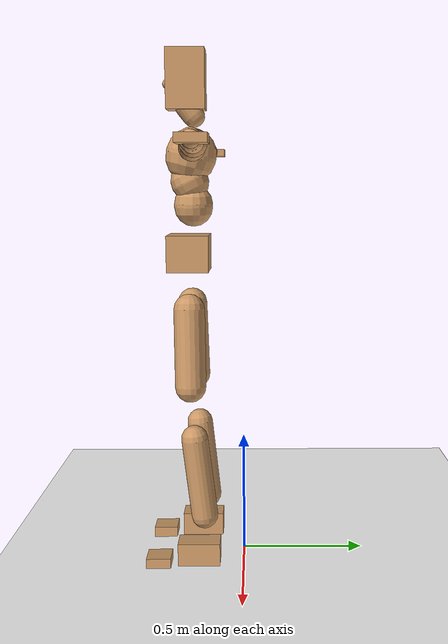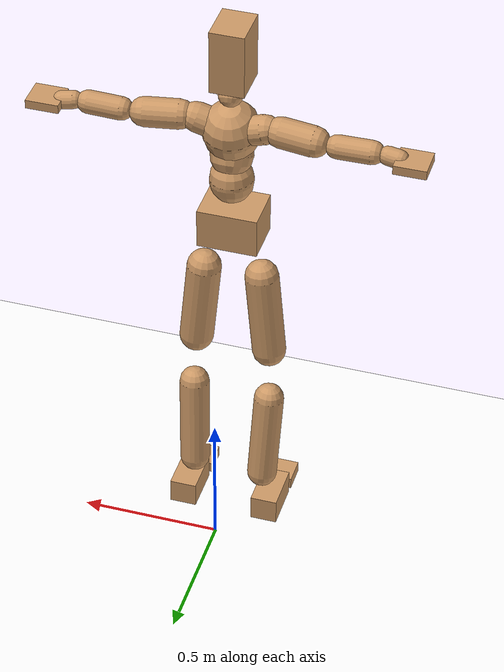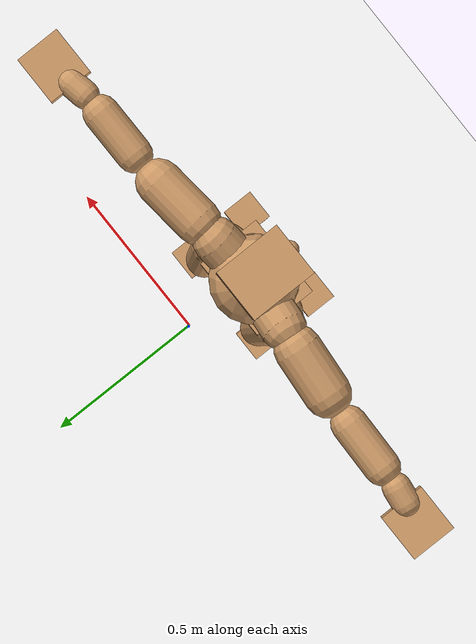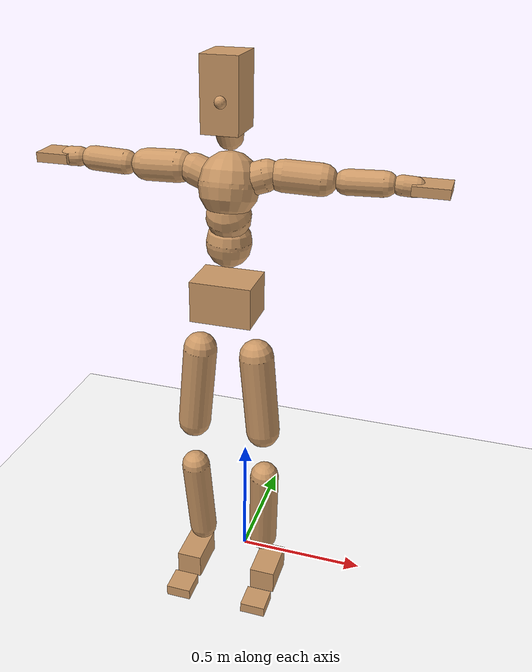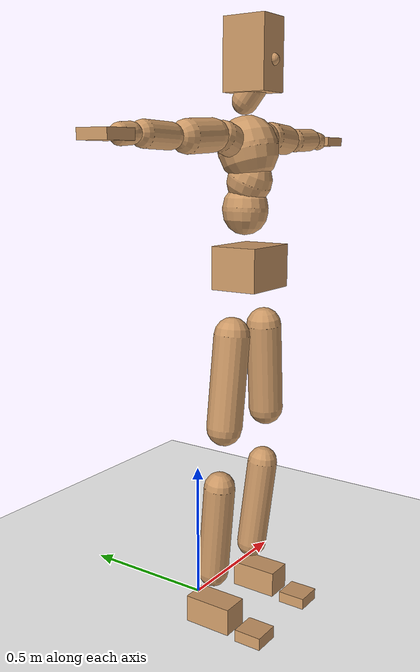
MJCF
<mujoco model="humanoid">
  <option integrator="implicitfast" />

  <visual>
    <global offwidth="1280" offheight="960" />
    <headlight active="1" ambient="0.34 0.34 0.34" diffuse="0.5 0.5 0.5" />
  </visual>

  <default>
    <joint damping="2" stiffness="2" armature="0.01" limited="true" solimplimit="0 .99 .01" />
    <geom condim="1" friction="0.7 0.005 0.0001" solimp=".99 .99 .003" solref="0.015 1" margin="0.001" rgba="0.8 0.6 .4 1" />
    <default class="smplcontact">
      <geom condim="3" friction="1. 0.005 0.0001" solref="0.015 1" solimp="0.98 0.98 0.001" priority="1" />
    </default>
    <default class="stiff_medium">
      <joint stiffness="10" />
    </default>
    <default class="stiff_medium_higher">
      <joint stiffness="50" />
    </default>
    <default class="stiff_high">
      <joint stiffness="100" />
    </default>
  </default>

  <asset>
    <texture type="skybox" builtin="gradient" rgb1="0.99 0.99 0.99" rgb2="0.608 0.828 0.892" width="100" />
    <texture builtin="flat" height="1278" mark="cross" markrgb="1 1 1" name="texgeom" random="0.01" rgb1="0.8 0.6 0.4" rgb2="0.8 0.6 0.4" type="cube" width="127" />
    <texture name="texplane" type="2d" builtin="checker" markrgb="1 1 1" rgb1="0.756 0.772 0.76" rgb2="0.6 0.6 0.6" width="100" height="100" />
    <material name="MatPlane" reflectance="0.5" texture="texplane" texrepeat="1 1" texuniform="true" />
    <material name="geom" texture="texgeom" texuniform="true" />
  </asset>

  <worldbody>
    <light name="tracking_light" pos="0 0 7" dir="0 0 -1" directional="true" cutoff="100" exponent="1" diffuse="1 1 1" specular="0.1 0.1 0.1" mode="trackcom" />
    <camera name="back" pos="0 3 2.4" xyaxes="-1 0 0 0 -1 2" mode="trackcom" />
    <camera name="side" pos="-3 0 2.4" xyaxes="0 -1 0 1 0 2" mode="trackcom" />
    <camera name="front_side" pos="-2.8 -2.8 0.8" xyaxes="0.5 -0.5 0 0.1 0.1 1" mode="trackcom" />
    <geom condim="3" name="floor" pos="0 0 0" rgba="1 1 1 1" size="100 100 .2" type="plane" material="MatPlane" />
    <body name="Pelvis" pos="-0.0018 -0.2233 1.27986" euler="90 0 0">
      <site name="Pelvis" size="0.01" />
      <freejoint name="Pelvis" />
      <geom type="box" pos="-0.0000 -0.0121 -0.0055" size="0.1069 0.0722 0.083" quat="1.0000 0.0000 0.0000 0.0000" density="3165.830099" name="Pelvis" />
      <body name="L_Hip" pos="0.0955625 -0.125675 -0.00935">
        <joint name="L_Hip_x" type="hinge" pos="0 0 0" axis="1 0 0" stiffness="17.19824030612245" range="-160.0 22.92" class="stiff_medium" damping="29.629361290924336" armature="0.022687051049198843"/>
        <joint name="L_Hip_y" type="hinge" pos="0 0 0" axis="0 1 0" stiffness="17.095561632653062" range="-70.0 70.0" class="stiff_medium" damping="16.759236135916318" armature="0.016429527259457156"/>
        <joint name="L_Hip_z" type="hinge" pos="0 0 0" axis="0 0 1" stiffness="17.10435142857143" range="-28.65 90.0" class="stiff_medium" damping="19.70284147196181" armature="0.022696093663089646"/>
        <geom type="capsule" density="2040.816327" fromto="0.0094875 -0.103125 -0.0012375 0.037675 -0.412775 -0.00495" size="0.0615" name="L_Hip" />
        <body name="L_Knee" pos="0.0471625 -0.5159 -0.0061875">
          <joint name="L_Knee_x" type="hinge" pos="0 0 0" axis="1 0 0" range="-5.16 171.89" damping="15.062760794576997" armature="0.021343797365827887" stiffness="3.321907163265306"/>
          <joint name="L_Knee_y" type="hinge" pos="0 0 0" axis="0 1 0" range="-4.58 6.88" damping="12.945965232871579" armature="0.015441578364462116" stiffness="3.3917763265306125"/>
          <joint name="L_Knee_z" type="hinge" pos="0 0 0" axis="0 0 1" range="-6.88 4.58" damping="15.006918060065535" armature="0.021384230246159514" stiffness="3.2910874489795923"/>
          <geom type="capsule" density="1234.567901" fromto="-0.0037125 -0.10945 -0.0119625 -0.0149875 -0.4378 -0.048125" size="0.0541" name="L_Knee" />
          <body name="L_Ankle" pos="-0.0187 -0.54725 -0.0600875">
            <joint name="L_Ankle_x" type="hinge" pos="0 0 0" axis="1 0 0" range="-45.84 45.84" class="stiff_medium" damping="8.859849432432517" armature="0.015857944517404413" stiffness="13.750018673469388"/>
            <joint name="L_Ankle_y" type="hinge" pos="0 0 0" axis="0 1 0" range="-74.48 22.92" class="stiff_medium" damping="4.399379468505369" armature="0.015640018623433526" stiffness="13.750011836734695"/>
            <joint name="L_Ankle_z" type="hinge" pos="0 0 0" axis="0 0 1" range="-4.58 4.58" class="stiff_medium" damping="8.387836414113993" armature="0.01421329287069428" stiffness="13.75"/>
            <geom type="box" pos="0.0320375 -0.0328625 0.033275" size="0.0483 0.0464 0.085" quat="1.0000 0.0000 0.0000 0.0000" density="449.071558" name="L_Ankle" class="smplcontact" />
            <body name="L_Toe" pos="0.0363 -0.076725 0.164038">
              <joint name="L_Toe_x" type="hinge" pos="0 0 0" axis="1 0 0" range="-91.67 22.92" armature="0.013386048586151967" damping="2.7133607799891966" stiffness="2.75"/>
              <joint name="L_Toe_y" type="hinge" pos="0 0 0" axis="0 1 0" range="-4.58 4.58" armature="0.012385744586589321" damping="2.610011402776648" stiffness="2.75"/>
              <joint name="L_Toe_z" type="hinge" pos="0 0 0" axis="0 0 1" range="-4.58 4.58" armature="0.010363183740581747" damping="2.3874151413861733" stiffness="2.75"/>
              <geom type="box" pos="-0.004125 0.0075625 0.0341" size="0.0478 0.02 0.0496" quat="1.0000 0.0000 0.0000 0.0000" density="423.206892" name="L_Toe" class="smplcontact" />
            </body>
          </body>
        </body>
      </body>
      <body name="R_Hip" pos="-0.0930875 -0.124437 -0.0059125">
        <joint name="R_Hip_x" type="hinge" pos="0 0 0" axis="1 0 0" stiffness="17.19824030612245" range="-160.0 22.92" class="stiff_medium" damping="29.629361290924336" armature="0.022687051049198843"/>
        <joint name="R_Hip_y" type="hinge" pos="0 0 0" axis="0 1 0" stiffness="17.095561632653062" range="-70.0 70.0" class="stiff_medium" damping="16.759236135916318" armature="0.016429527259457156"/>
        <joint name="R_Hip_z" type="hinge" pos="0 0 0" axis="0 0 1" stiffness="17.10435142857143" range="-90.0 28.65" class="stiff_medium" damping="19.70284147196181" armature="0.022696093663089646"/>
        <geom type="capsule" density="2040.816327" fromto="-0.0105875 -0.105188 -0.002475 -0.042075 -0.420887 -0.0097625" size="0.0606" name="R_Hip" />
        <body name="R_Knee" pos="-0.0526625 -0.526075 -0.0122375">
          <joint name="R_Knee_x" type="hinge" pos="0 0 0" axis="1 0 0" range="-5.16 171.89" damping="15.062760794576997" armature="0.021343797365827887" stiffness="3.321907163265306"/>
          <joint name="R_Knee_y" type="hinge" pos="0 0 0" axis="0 1 0" range="-6.88 4.58" damping="12.945965232871579" armature="0.015441578364462116" stiffness="3.3917763265306125"/>
          <joint name="R_Knee_z" type="hinge" pos="0 0 0" axis="0 0 1" range="-4.58 6.88" damping="15.006918060065535" armature="0.021384230246159514" stiffness="3.2910874489795923"/>
          <geom type="capsule" density="1234.567901" fromto="0.0044 -0.109587 -0.0116875 0.017325 -0.438213 -0.046475" size="0.0541" name="R_Knee" />
          <body name="R_Ankle" pos="0.021725 -0.5478 -0.0581625">
            <joint name="R_Ankle_x" type="hinge" pos="0 0 0" axis="1 0 0" range="-45.84 45.84" class="stiff_medium" damping="8.859849432432517" armature="0.015857944517404413" stiffness="13.750018673469388"/>
            <joint name="R_Ankle_y" type="hinge" pos="0 0 0" axis="0 1 0" range="-22.92 74.48" class="stiff_medium" damping="4.399379468505369" armature="0.015640018623433526" stiffness="13.750011836734695"/>
            <joint name="R_Ankle_z" type="hinge" pos="0 0 0" axis="0 0 1" range="-4.58 4.58" class="stiff_medium" damping="8.387836414113993" armature="0.01421329287069428" stiffness="13.75"/>
            <geom type="box" pos="-0.02915 -0.023925 0.0352" size="0.0483 0.0478 0.0865" quat="1.0000 0.0000 0.0000 0.0000" density="434.700981" name="R_Ankle" class="smplcontact" />
            <body name="R_Toe" pos="-0.034925 -0.0661375 0.169538">
              <joint name="R_Toe_x" type="hinge" pos="0 0 0" axis="1 0 0" range="-91.67 22.92" armature="0.013386048586151967" damping="2.7133607799891966" stiffness="2.75"/>
              <joint name="R_Toe_y" type="hinge" pos="0 0 0" axis="0 1 0" range="-4.58 4.58" armature="0.012385744586589321" damping="2.610011402776648" stiffness="2.75"/>
              <joint name="R_Toe_z" type="hinge" pos="0 0 0" axis="0 0 1" range="-4.58 4.58" armature="0.010363183740581747" damping="2.3874151413861733" stiffness="2.75"/>
              <geom type="box" pos="0.005775 0.0061875 0.0312125" size="0.0479 0.0216 0.0493" quat="1.0000 0.0000 0.0000 0.0000" density="407.384095" name="R_Toe" class="smplcontact" />
            </body>
          </body>
        </body>
      </body>
      <body name="Torso" pos="-0.0025 0.109 -0.0267">
        <joint name="Torso_x" type="hinge" pos="0 0 0" axis="1 0 0" range="-25.78 57.3" class="stiff_medium" damping="13.810652204593472" armature="0.009092501018959226" stiffness="9.323146326530612"/>
        <joint name="Torso_y" type="hinge" pos="0 0 0" axis="0 1 0" range="-57.3 57.3" class="stiff_high" damping="14.331171543099824" armature="0.005453647751768045" stiffness="94.1491306122449"/>
        <joint name="Torso_z" type="hinge" pos="0 0 0" axis="0 0 1" range="-34.38 34.38" class="stiff_high" damping="17.298336416757884" armature="0.007846444358372215" stiffness="95.34014042553191"/>
        <geom type="capsule" density="2040.816327" fromto="0.0025 0.0608 0.0005 0.003 0.0743 0.0006" size="0.0769" name="Torso" />
        <body name="Spine" pos="0.0055 0.1352 0.0011">
          <joint name="Spine_x" type="hinge" pos="0 0 0" axis="1 0 0" stiffness="9.198122653061224" range="-25.78 57.3" class="stiff_medium" damping="13.62544793240939" armature="0.008970566343267752"/>
          <joint name="Spine_y" type="hinge" pos="0 0 0" axis="0 1 0" stiffness="9.181372040816328" range="-57.3 57.3" class="stiff_high" damping="5.644321396937274" armature="0.005421705337566874"/>
          <joint name="Spine_z" type="hinge" pos="0 0 0" axis="0 0 1" stiffness="18.1392375" range="-34.38 34.38" class="stiff_high" damping="9.559994320421614" armature="0.006997835754189833"/>
          <geom type="capsule" density="2040.816327" fromto="0.0007 0.0238 0.0114 0.0008 0.0291 0.014" size="0.0755" name="Spine" />
          <body name="Chest" pos="0.0015 0.0529 0.0254">
            <joint name="Chest_x" type="hinge" pos="0 0 0" axis="1 0 0" stiffness="8.90027425531915" range="-25.78 57.3" class="stiff_medium" damping="13.35613299120066" armature="0.008907904701027891"/>
            <joint name="Chest_y" type="hinge" pos="0 0 0" axis="0 1 0" stiffness="8.011889047619047" range="-57.3 57.3" class="stiff_high" damping="5.2662250647625015" armature="0.005408588385784326"/>
            <joint name="Chest_z" type="hinge" pos="0 0 0" axis="0 0 1" stiffness="18.1318547826087" range="-34.38 34.38" class="stiff_high" damping="9.302458057933913" armature="0.006628583212401061"/>
            <geom type="capsule" density="2040.816327" fromto="-0.0009 0.0682 -0.0173 -0.001 0.0833 -0.0212" size="0.1002" name="Chest" />
            <body name="Neck" pos="-0.0028 0.2139 -0.0429">
              <joint name="Neck_x" type="hinge" pos="0 0 0" axis="1 0 0" range="-28.65 57.3" class="stiff_medium_higher" damping="10.000000000000014" armature="0.01000000000000003" stiffness="50.0"/>
              <joint name="Neck_y" type="hinge" pos="0 0 0" axis="0 1 0" range="-40.11 40.11" class="stiff_medium_higher" damping="10.0" armature="0.01" stiffness="50.0"/>
              <joint name="Neck_z" type="hinge" pos="0 0 0" axis="0 0 1" range="-40.11 40.11" class="stiff_medium_higher" damping="10.000000000000018" armature="0.010000000000000038" stiffness="50.0"/>
              <geom type="capsule" density="1000" fromto="0.001 0.013 0.0103 0.0041 0.052 0.0411" size="0.0436" name="Neck" />
              <body name="Head" pos="0.0052 0.065 0.0513">
                <joint name="Head_x" type="hinge" pos="0 0 0" axis="1 0 0" range="-28.65 57.3" class="stiff_medium_higher" damping="2.0000000000000018" armature="0.010000000000000018" stiffness="50.0"/>
                <joint name="Head_y" type="hinge" pos="0 0 0" axis="0 1 0" range="-40.11 40.11" class="stiff_medium_higher" damping="2.0" armature="0.01" stiffness="50.0"/>
                <joint name="Head_z" type="hinge" pos="0 0 0" axis="0 0 1" range="-40.11 40.11" class="stiff_medium_higher" damping="2.0000000000000075" armature="0.010000000000000078" stiffness="50.0"/>
                <geom type="box" pos="-0.0042 0.0876 -0.0116" size="0.0606 0.1154 0.076" quat="1.0000 0.0000 0.0000 0.0000" density="1018.069894" name="Head" />
                <geom type="capsule" name="nose" size="0.02 0.01" pos="0 0.07 0.05" quat="1 0 0 0" mass="0" contype="0" conaffinity="0" />
              </body>
            </body>
            <body name="L_Thorax" pos="0.06107 0.0943175 -0.0264275">
              <joint name="L_Thorax_x" type="hinge" pos="0 0 0" axis="1 0 0" range="-10.89 4.58" class="stiff_medium_higher" damping="13.430877912506665" armature="0.006743873105350326" stiffness="33.43562346938776"/>
              <joint name="L_Thorax_y" type="hinge" pos="0 0 0" axis="0 1 0" range="-28.65 17.19" class="stiff_medium_higher" damping="11.84395870975866" armature="0.0052794554835980945" stiffness="33.21350051020408"/>
              <joint name="L_Thorax_z" type="hinge" pos="0 0 0" axis="0 0 1" range="-31.51 40.11" class="stiff_medium_higher" damping="11.84290484733603" armature="0.005278125365951003" stiffness="33.215958673469395"/>
              <geom type="capsule" density="1000" fromto="0.014105 0.0047275 -0.001395 0.05642 0.01891 -0.0055025" size="0.0521" name="L_Thorax" />
              <body name="L_Shoulder" pos="0.070525 0.0236375 -0.0068975">
                <joint name="L_Shoulder_x" type="hinge" pos="0 0 0" axis="1 0 0" range="-97.4 97.4" class="stiff_medium" damping="4.200573869623503" armature="0.007293874713182475" stiffness="6.719801632653062"/>
                <joint name="L_Shoulder_y" type="hinge" pos="0 0 0" axis="0 1 0" range="-108.86 80.21" class="stiff_medium" damping="3.571992469559294" armature="0.0053222464306009526" stiffness="6.659223469387755"/>
                <joint name="L_Shoulder_z" type="hinge" pos="0 0 0" axis="0 0 1" range="-97.4 85.94" class="stiff_medium" damping="3.5723414695273763" armature="0.005320431449506394" stiffness="6.662796938775511"/>
                <geom type="capsule" density="1000" fromto="0.0402225 -0.002015 -0.0042625 0.160968 -0.007905 -0.01705" size="0.0517" name="L_Shoulder" />
                <body name="L_Elbow" pos="0.20119 -0.00992 -0.0213125">
                  <joint name="L_Elbow_x" type="hinge" pos="0 0 0" axis="1 0 0" range="-17.19 4.58" damping="3.7512094390015536" armature="0.008221713445805363" stiffness="1.3692106734693876"/>
                  <joint name="L_Elbow_y" type="hinge" pos="0 0 0" axis="0 1 0" range="-180.0 17.19" damping="3.0766314110203523" armature="0.005532912421377131" stiffness="1.368633387755102"/>
                  <joint name="L_Elbow_z" type="hinge" pos="0 0 0" axis="0 0 1" range="-100.84 4.58" damping="3.0750834512185725" armature="0.0055233832548334605" stiffness="1.3696153673469391"/>
                  <geom type="capsule" density="1000" fromto="0.038595 0.001395 -0.000155 0.154535 0.00558 -0.0006975" size="0.0405" name="L_Elbow" />
                  <body name="L_Wrist" pos="0.19313 0.006975 -0.00093">
                    <joint name="L_Wrist_x" type="hinge" pos="0 0 0" axis="1 0 0" range="-180.0 22.92" armature="0.008602907880090408" damping="1.5994571311849286" stiffness="1.486859530612245"/>
                    <joint name="L_Wrist_y" type="hinge" pos="0 0 0" axis="0 1 0" range="-17.19 17.19" armature="0.006335437662014441" damping="1.3682982903238952" stiffness="1.4775934285714285"/>
                    <joint name="L_Wrist_z" type="hinge" pos="0 0 0" axis="0 0 1" range="-22.92 22.92" armature="0.006206199430184851" damping="1.3559819581986254" stiffness="1.4813309591836734"/>
                    <geom type="capsule" density="1000" fromto="0.01302 -0.00124 -0.002325 0.05208 -0.0050375 -0.0093" size="0.0318" name="L_Wrist" class="smplcontact" />
                    <body name="L_Hand" pos="0.0651 -0.006355 -0.0115475">
                      <joint name="L_Hand_x" type="hinge" pos="0 0 0" axis="1 0 0" range="-17.19 17.19" armature="0.00982600764642054" damping="1.7452972154880577" stiffness="1.55"/>
                      <joint name="L_Hand_y" type="hinge" pos="0 0 0" axis="0 1 0" range="-51.57 51.57" armature="0.007895802531703829" damping="1.5645123153328602" stiffness="1.55"/>
                      <joint name="L_Hand_z" type="hinge" pos="0 0 0" axis="0 0 1" range="-91.67 91.67" armature="0.00738127998582653" damping="1.5126786822078984" stiffness="1.55"/>
                      <geom type="box" pos="0.0382075 0.000775 -0.004495" size="0.0585 0.0158 0.0538" quat="1.0000 0.0000 0.0000 0.0000" density="400.552564" name="L_Hand" class="smplcontact" />
                    </body>
                  </body>
                </body>
              </body>
            </body>
            <body name="R_Thorax" pos="-0.063395 0.09207 -0.029915">
              <joint name="R_Thorax_x" type="hinge" pos="0 0 0" axis="1 0 0" range="-10.89 4.58" class="stiff_medium_higher" damping="13.430877912506665" armature="0.006743873105350326" stiffness="33.43562346938776"/>
              <joint name="R_Thorax_y" type="hinge" pos="0 0 0" axis="0 1 0" range="-17.19 28.65" class="stiff_medium_higher" damping="11.84395870975866" armature="0.0052794554835980945" stiffness="33.21350051020408"/>
              <joint name="R_Thorax_z" type="hinge" pos="0 0 0" axis="0 0 1" range="-40.11 31.51" class="stiff_medium_higher" damping="11.84290484733603" armature="0.005278125365951003" stiffness="33.215958673469395"/>
              <geom type="capsule" density="1000" fromto="-0.01488 0.0050375 -0.001395 -0.05952 0.02015 -0.0056575" size="0.0511" name="R_Thorax" />
              <body name="R_Shoulder" pos="-0.0744 0.025265 -0.0070525">
                <joint name="R_Shoulder_x" type="hinge" pos="0 0 0" axis="1 0 0" range="-97.4 97.4" class="stiff_medium" damping="4.200573869623503" armature="0.007293874713182475" stiffness="6.719801632653062"/>
                <joint name="R_Shoulder_y" type="hinge" pos="0 0 0" axis="0 1 0" range="-80.21 108.86" class="stiff_medium" damping="3.571992469559294" armature="0.0053222464306009526" stiffness="6.659223469387755"/>
                <joint name="R_Shoulder_z" type="hinge" pos="0 0 0" axis="0 0 1" range="-85.94 97.4" class="stiff_medium" damping="3.5723414695273763" armature="0.005320431449506394" stiffness="6.662796938775511"/>
                <geom type="capsule" density="1000" fromto="-0.0392925 -0.0020925 -0.0033325 -0.157325 -0.0082925 -0.0132525" size="0.0531" name="R_Shoulder" />
                <body name="R_Elbow" pos="-0.196618 -0.0103075 -0.016585">
                  <joint name="R_Elbow_x" type="hinge" pos="0 0 0" axis="1 0 0" range="-17.19 4.58" damping="3.7512094390015536" armature="0.008221713445805363" stiffness="1.3692106734693876"/>
                  <joint name="R_Elbow_y" type="hinge" pos="0 0 0" axis="0 1 0" range="-17.19 180.0" damping="3.0766314110203523" armature="0.005532912421377131" stiffness="1.368633387755102"/>
                  <joint name="R_Elbow_z" type="hinge" pos="0 0 0" axis="0 0 1" range="-4.58 100.84" damping="3.0750834512185725" armature="0.0055233832548334605" stiffness="1.3696153673469391"/>
                  <geom type="capsule" density="1000" fromto="-0.0396025 0.00124 -0.0008525 -0.158255 0.004805 -0.00341" size="0.0408" name="R_Elbow" />
                  <body name="R_Wrist" pos="-0.197858 0.006045 -0.00434">
                    <joint name="R_Wrist_x" type="hinge" pos="0 0 0" axis="1 0 0" range="-180.0 22.92" armature="0.008602907880090408" damping="1.5994571311849286" stiffness="1.486859530612245"/>
                    <joint name="R_Wrist_y" type="hinge" pos="0 0 0" axis="0 1 0" range="-17.19 17.19" armature="0.006335437662014441" damping="1.3682982903238952" stiffness="1.4775934285714285"/>
                    <joint name="R_Wrist_z" type="hinge" pos="0 0 0" axis="0 0 1" range="-22.92 22.92" armature="0.006206199430184851" damping="1.3559819581986254" stiffness="1.4813309591836734"/>
                    <geom type="capsule" density="1000" fromto="-0.0130975 -0.00093 -0.0016275 -0.0524675 -0.0037975 -0.0064325" size="0.0326" name="R_Wrist" class="smplcontact" />
                    <body name="R_Hand" pos="-0.065565 -0.0047275 -0.0079825">
                      <joint name="R_Hand_x" type="hinge" pos="0 0 0" axis="1 0 0" range="-17.19 17.19" armature="0.00982600764642054" damping="1.7452972154880577" stiffness="1.55"/>
                      <joint name="R_Hand_y" type="hinge" pos="0 0 0" axis="0 1 0" range="-51.57 51.57" armature="0.007895802531703829" damping="1.5645123153328602" stiffness="1.55"/>
                      <joint name="R_Hand_z" type="hinge" pos="0 0 0" axis="0 0 1" range="-91.67 91.67" armature="0.00738127998582653" damping="1.5126786822078984" stiffness="1.55"/>
                      <geom type="box" pos="-0.035805 -0.0006975 -0.0061225" size="0.0569 0.0164 0.0546" quat="1.0000 0.0000 0.0000 0.0000" density="403.679611" name="R_Hand" class="smplcontact" />
                    </body>
                  </body>
                </body>
              </body>
            </body>
          </body>
        </body>
      </body>
    </body>
  </worldbody>
  <actuator>
    <general name="L_Hip_x" joint="L_Hip_x" biastype="affine" gainprm="494.15714895193184" biasprm="-370.3206974542467 -309.5683255102041 -3.950581505456578" ctrllimited="true" ctrlrange="-1 1" forcerange="-619.1366510204082 619.1366510204082" />
    <general name="L_Hip_y" joint="L_Hip_y" biastype="affine" gainprm="375.9510358389407" biasprm="0.0 -307.72010938775514 -3.3518472271832636" ctrllimited="true" ctrlrange="-1 1" forcerange="-615.4402187755103 615.4402187755103" />
    <general name="L_Hip_z" joint="L_Hip_z" biastype="affine" gainprm="318.78232268102033" biasprm="164.83182045074247 -307.8783257142857 -3.9405682943923623" ctrllimited="true" ctrlrange="-1 1" forcerange="-615.7566514285714 615.7566514285714" />
    <general name="L_Knee_x" joint="L_Knee_x" biastype="affine" gainprm="461.92695293520586" biasprm="435.00186875395013 -298.9716446938775 -3.7656901986442493" ctrllimited="true" ctrlrange="-1 1" forcerange="-597.943289387755 597.943289387755" />
    <general name="L_Knee_y" joint="L_Knee_y" biastype="affine" gainprm="30.528235525488515" biasprm="6.1269582642778 -305.25986938775515 -3.2364913082178948" ctrllimited="true" ctrlrange="-1 1" forcerange="-610.5197387755103 610.5197387755103" />
    <general name="L_Knee_z" joint="L_Knee_z" biastype="affine" gainprm="29.621968875582738" biasprm="-5.945072287420619 -296.1978704081633 -3.751729515016384" ctrllimited="true" ctrlrange="-1 1" forcerange="-592.3957408163266 592.3957408163266" />
    <general name="L_Ankle_x" joint="L_Ankle_x" biastype="affine" gainprm="99.00742693676564" biasprm="0.0 -123.7501680612245 -2.9532831441441725" ctrllimited="true" ctrlrange="-1 1" forcerange="-247.500336122449 247.500336122449" />
    <general name="L_Ankle_y" joint="L_Ankle_y" biastype="affine" gainprm="105.18453958139726" biasprm="-55.680850727072304 -123.75010653061226 -2.932919645670246" ctrllimited="true" ctrlrange="-1 1" forcerange="-247.5002130612245 247.5002130612245" />
    <general name="L_Ankle_z" joint="L_Ankle_z" biastype="affine" gainprm="9.89208986799086" biasprm="0.0 -123.75 -2.795945471371331" ctrllimited="true" ctrlrange="-1 1" forcerange="-247.5 247.5" />
    <general name="L_Toe_x" joint="L_Toe_x" biastype="affine" gainprm="98.99865309808496" biasprm="-59.39573610693202 -99.0 -1.0853443119956787" ctrllimited="true" ctrlrange="-1 1" forcerange="-198.0 198.0" />
    <general name="L_Toe_y" joint="L_Toe_y" biastype="affine" gainprm="7.913671894392689" biasprm="0.0 -99.0 -1.0440045611106592" ctrllimited="true" ctrlrange="-1 1" forcerange="-198.0 198.0" />
    <general name="L_Toe_z" joint="L_Toe_z" biastype="affine" gainprm="7.913671894392689" biasprm="0.0 -99.0 -0.9549660565544693" ctrllimited="true" ctrlrange="-1 1" forcerange="-198.0 198.0" />
    <general name="R_Hip_x" joint="R_Hip_x" biastype="affine" gainprm="494.15714895193184" biasprm="-370.3206974542467 -309.5683255102041 -3.950581505456578" ctrllimited="true" ctrlrange="-1 1" forcerange="-619.1366510204082 619.1366510204082" />
    <general name="R_Hip_y" joint="R_Hip_y" biastype="affine" gainprm="375.9510358389407" biasprm="0.0 -307.72010938775514 -3.3518472271832636" ctrllimited="true" ctrlrange="-1 1" forcerange="-615.4402187755103 615.4402187755103" />
    <general name="R_Hip_z" joint="R_Hip_z" biastype="affine" gainprm="318.78232268102033" biasprm="-164.83182045074247 -307.8783257142857 -3.9405682943923623" ctrllimited="true" ctrlrange="-1 1" forcerange="-615.7566514285714 615.7566514285714" />
    <general name="R_Knee_x" joint="R_Knee_x" biastype="affine" gainprm="461.92695293520586" biasprm="435.00186875395013 -298.9716446938775 -3.7656901986442493" ctrllimited="true" ctrlrange="-1 1" forcerange="-597.943289387755 597.943289387755" />
    <general name="R_Knee_y" joint="R_Knee_y" biastype="affine" gainprm="30.528235525488515" biasprm="-6.1269582642778 -305.25986938775515 -3.2364913082178948" ctrllimited="true" ctrlrange="-1 1" forcerange="-610.5197387755103 610.5197387755103" />
    <general name="R_Knee_z" joint="R_Knee_z" biastype="affine" gainprm="29.621968875582738" biasprm="5.945072287420619 -296.1978704081633 -3.751729515016384" ctrllimited="true" ctrlrange="-1 1" forcerange="-592.3957408163266 592.3957408163266" />
    <general name="R_Ankle_x" joint="R_Ankle_x" biastype="affine" gainprm="99.00742693676564" biasprm="0.0 -123.7501680612245 -2.9532831441441725" ctrllimited="true" ctrlrange="-1 1" forcerange="-247.500336122449 247.500336122449" />
    <general name="R_Ankle_y" joint="R_Ankle_y" biastype="affine" gainprm="105.18453958139726" biasprm="55.680850727072304 -123.75010653061226 -2.932919645670246" ctrllimited="true" ctrlrange="-1 1" forcerange="-247.5002130612245 247.5002130612245" />
    <general name="R_Ankle_z" joint="R_Ankle_z" biastype="affine" gainprm="9.89208986799086" biasprm="0.0 -123.75 -2.795945471371331" ctrllimited="true" ctrlrange="-1 1" forcerange="-247.5 247.5" />
    <general name="R_Toe_x" joint="R_Toe_x" biastype="affine" gainprm="98.99865309808496" biasprm="-59.39573610693202 -99.0 -1.0853443119956787" ctrllimited="true" ctrlrange="-1 1" forcerange="-198.0 198.0" />
    <general name="R_Toe_y" joint="R_Toe_y" biastype="affine" gainprm="7.913671894392689" biasprm="0.0 -99.0 -1.0440045611106592" ctrllimited="true" ctrlrange="-1 1" forcerange="-198.0 198.0" />
    <general name="R_Toe_z" joint="R_Toe_z" biastype="affine" gainprm="7.913671894392689" biasprm="0.0 -99.0 -0.9549660565544693" ctrllimited="true" ctrlrange="-1 1" forcerange="-198.0 198.0" />
    <general name="Torso_x" joint="Torso_x" biastype="affine" gainprm="162.2249324590423" biasprm="61.54706152032995 -223.7555118367347 -3.6828405878915924" ctrllimited="true" ctrlrange="-1 1" forcerange="-335.63326775510205 335.63326775510205" />
    <general name="Torso_y" joint="Torso_y" biastype="affine" gainprm="225.974557843997" biasprm="0.0 -225.95791346938776 -2.8662343086199646" ctrllimited="true" ctrlrange="-1 1" forcerange="-338.93687020408163 338.93687020408163" />
    <general name="Torso_z" joint="Torso_z" biastype="affine" gainprm="137.29991517080745" biasprm="0.0 -228.8163370212766 -3.4596672833515765" ctrllimited="true" ctrlrange="-1 1" forcerange="-343.2245055319149 343.2245055319149" />
    <general name="Spine_x" joint="Spine_x" biastype="affine" gainprm="160.04949122128795" biasprm="60.721713568789056 -220.7549436734694 -3.633452781975837" ctrllimited="true" ctrlrange="-1 1" forcerange="-331.1324155102041 331.1324155102041" />
    <general name="Spine_y" joint="Spine_y" biastype="affine" gainprm="220.36916048323718" biasprm="0.0 -220.35292897959184 -2.822160698468637" ctrllimited="true" ctrlrange="-1 1" forcerange="-330.52939346938774 330.52939346938774" />
    <general name="Spine_z" joint="Spine_z" biastype="affine" gainprm="130.61213036278338" biasprm="0.0 -217.67085 -3.1866647734738716" ctrllimited="true" ctrlrange="-1 1" forcerange="-326.506275 326.506275" />
    <general name="Chest_x" joint="Chest_x" biastype="affine" gainprm="154.86685925194476" biasprm="58.7554574340551 -213.6065821276596 -3.561635464320176" ctrllimited="true" ctrlrange="-1 1" forcerange="-320.4098731914894 320.4098731914894" />
    <general name="Chest_y" joint="Chest_y" biastype="affine" gainprm="192.29950114859662" biasprm="0.0 -192.28533714285712 -2.6331125323812508" ctrllimited="true" ctrlrange="-1 1" forcerange="-288.4280057142857 288.4280057142857" />
    <general name="Chest_z" joint="Chest_z" biastype="affine" gainprm="130.55897088205305" biasprm="0.0 -217.58225739130438 -3.100819352644638" ctrllimited="true" ctrlrange="-1 1" forcerange="-326.37338608695654 326.37338608695654" />
    <general name="Neck_x" joint="Neck_x" biastype="affine" gainprm="27.00198885760427" biasprm="9.000662952534757 -36.0 -0.8000000000000012" ctrllimited="true" ctrlrange="-1 1" forcerange="-72.0 72.0" />
    <general name="Neck_y" joint="Neck_y" biastype="affine" gainprm="25.20185626709732" biasprm="0.0 -36.0 -0.8" ctrllimited="true" ctrlrange="-1 1" forcerange="-72.0 72.0" />
    <general name="Neck_z" joint="Neck_z" biastype="affine" gainprm="25.20185626709732" biasprm="0.0 -36.0 -0.8000000000000015" ctrllimited="true" ctrlrange="-1 1" forcerange="-72.0 72.0" />
    <general name="Head_x" joint="Head_x" biastype="affine" gainprm="18.001325905069514" biasprm="6.000441968356505 -24.0 -0.8000000000000007" ctrllimited="true" ctrlrange="-1 1" forcerange="-48.0 48.0" />
    <general name="Head_y" joint="Head_y" biastype="affine" gainprm="16.801237511398213" biasprm="0.0 -24.0 -0.8" ctrllimited="true" ctrlrange="-1 1" forcerange="-48.0 48.0" />
    <general name="Head_z" joint="Head_z" biastype="affine" gainprm="16.801237511398213" biasprm="0.0 -24.0 -0.800000000000003" ctrllimited="true" ctrlrange="-1 1" forcerange="-48.0 48.0" />
    <general name="L_Thorax_x" joint="L_Thorax_x" biastype="affine" gainprm="10.833239714349121" biasprm="-4.4187293211081435 -80.24549632653061 -1.0744702330005331" ctrllimited="true" ctrlrange="-1 1" forcerange="-160.49099265306123 160.49099265306123" />
    <general name="L_Thorax_y" joint="L_Thorax_y" biastype="affine" gainprm="31.887309180393395" biasprm="-7.971827295098349 -79.71240122448978 -0.9475166967806928" ctrllimited="true" ctrlrange="-1 1" forcerange="-159.42480244897956 159.42480244897956" />
    <general name="L_Thorax_z" joint="L_Thorax_z" biastype="affine" gainprm="49.8241297438119" biasprm="5.98279134036278 -79.71830081632655 -0.9474323877868823" ctrllimited="true" ctrlrange="-1 1" forcerange="-159.4366016326531 159.4366016326531" />
    <general name="L_Shoulder_x" joint="L_Shoulder_x" biastype="affine" gainprm="54.831990872567324" biasprm="0.0 -32.2550478367347 -1.120153031899601" ctrllimited="true" ctrlrange="-1 1" forcerange="-64.5100956734694 64.5100956734694" />
    <general name="L_Shoulder_y" joint="L_Shoulder_y" biastype="affine" gainprm="52.739356038732126" biasprm="-7.9916567964757785 -31.964272653061222 -0.9525313252158117" ctrllimited="true" ctrlrange="-1 1" forcerange="-63.928545306122444 63.928545306122444" />
    <general name="L_Shoulder_z" joint="L_Shoulder_z" biastype="affine" gainprm="51.16846795221352" biasprm="-3.1983781102452724 -31.98142530612245 -0.9526243918739671" ctrllimited="true" ctrlrange="-1 1" forcerange="-63.9628506122449 63.9628506122449" />
    <general name="L_Elbow_x" joint="L_Elbow_x" biastype="affine" gainprm="9.364370274135227" biasprm="-5.424194265358073 -49.291584244897955 -0.6001935102402487" ctrllimited="true" ctrlrange="-1 1" forcerange="-98.58316848979591 98.58316848979591" />
    <general name="L_Elbow_y" joint="L_Elbow_y" biastype="affine" gainprm="84.78555943298619" biasprm="-70.00323003846282 -49.27080195918367 -0.4922610257632564" ctrllimited="true" ctrlrange="-1 1" forcerange="-98.54160391836734 98.54160391836734" />
    <general name="L_Elbow_z" joint="L_Elbow_z" biastype="affine" gainprm="45.359839041363344" biasprm="-41.41849844547179 -49.306153224489805 -0.49201335219497166" ctrllimited="true" ctrlrange="-1 1" forcerange="-98.61230644897961 98.61230644897961" />
    <general name="L_Wrist_x" joint="L_Wrist_x" biastype="affine" gainprm="15.797683800581504" biasprm="-12.228958069166877 -8.92115718367347 -0.6397828524739715" ctrllimited="true" ctrlrange="-1 1" forcerange="-17.84231436734694 17.84231436734694" />
    <general name="L_Wrist_y" joint="L_Wrist_y" biastype="affine" gainprm="2.659864086290334" biasprm="0.0 -8.86556057142857 -0.5473193161295581" ctrllimited="true" ctrlrange="-1 1" forcerange="-17.73112114285714 17.73112114285714" />
    <general name="L_Wrist_z" joint="L_Wrist_z" biastype="affine" gainprm="3.5554561826046047" biasprm="0.0 -8.88798575510204 -0.5423927832794502" ctrllimited="true" ctrlrange="-1 1" forcerange="-17.77597151020408 17.77597151020408" />
    <general name="L_Hand_x" joint="L_Hand_x" biastype="affine" gainprm="2.7902055152857757" biasprm="0.0 -9.3 -0.6981188861952231" ctrllimited="true" ctrlrange="-1 1" forcerange="-18.6 18.6" />
    <general name="L_Hand_y" joint="L_Hand_y" biastype="affine" gainprm="8.370616545857324" biasprm="0.0 -9.3 -0.6258049261331441" ctrllimited="true" ctrlrange="-1 1" forcerange="-18.6 18.6" />
    <general name="L_Hand_z" joint="L_Hand_z" biastype="affine" gainprm="14.879472925319778" biasprm="0.0 -9.3 -0.6050714728831594" ctrllimited="true" ctrlrange="-1 1" forcerange="-18.6 18.6" />
    <general name="R_Thorax_x" joint="R_Thorax_x" biastype="affine" gainprm="10.833239714349121" biasprm="-4.4187293211081435 -80.24549632653061 -1.0744702330005331" ctrllimited="true" ctrlrange="-1 1" forcerange="-160.49099265306123 160.49099265306123" />
    <general name="R_Thorax_y" joint="R_Thorax_y" biastype="affine" gainprm="31.887309180393395" biasprm="7.971827295098343 -79.71240122448978 -0.9475166967806928" ctrllimited="true" ctrlrange="-1 1" forcerange="-159.42480244897956 159.42480244897956" />
    <general name="R_Thorax_z" joint="R_Thorax_z" biastype="affine" gainprm="49.8241297438119" biasprm="-5.98279134036278 -79.71830081632655 -0.9474323877868823" ctrllimited="true" ctrlrange="-1 1" forcerange="-159.4366016326531 159.4366016326531" />
    <general name="R_Shoulder_x" joint="R_Shoulder_x" biastype="affine" gainprm="54.831990872567324" biasprm="0.0 -32.2550478367347 -1.120153031899601" ctrllimited="true" ctrlrange="-1 1" forcerange="-64.5100956734694 64.5100956734694" />
    <general name="R_Shoulder_y" joint="R_Shoulder_y" biastype="affine" gainprm="52.739356038732126" biasprm="7.9916567964757785 -31.964272653061222 -0.9525313252158117" ctrllimited="true" ctrlrange="-1 1" forcerange="-63.928545306122444 63.928545306122444" />
    <general name="R_Shoulder_z" joint="R_Shoulder_z" biastype="affine" gainprm="51.16846795221352" biasprm="3.1983781102452653 -31.98142530612245 -0.9526243918739671" ctrllimited="true" ctrlrange="-1 1" forcerange="-63.9628506122449 63.9628506122449" />
    <general name="R_Elbow_x" joint="R_Elbow_x" biastype="affine" gainprm="9.364370274135227" biasprm="-5.424194265358073 -49.291584244897955 -0.6001935102402487" ctrllimited="true" ctrlrange="-1 1" forcerange="-98.58316848979591 98.58316848979591" />
    <general name="R_Elbow_y" joint="R_Elbow_y" biastype="affine" gainprm="84.78555943298619" biasprm="70.00323003846282 -49.27080195918367 -0.4922610257632564" ctrllimited="true" ctrlrange="-1 1" forcerange="-98.54160391836734 98.54160391836734" />
    <general name="R_Elbow_z" joint="R_Elbow_z" biastype="affine" gainprm="45.359839041363344" biasprm="41.41849844547178 -49.306153224489805 -0.49201335219497166" ctrllimited="true" ctrlrange="-1 1" forcerange="-98.61230644897961 98.61230644897961" />
    <general name="R_Wrist_x" joint="R_Wrist_x" biastype="affine" gainprm="15.797683800581504" biasprm="-12.228958069166877 -8.92115718367347 -0.6397828524739715" ctrllimited="true" ctrlrange="-1 1" forcerange="-17.84231436734694 17.84231436734694" />
    <general name="R_Wrist_y" joint="R_Wrist_y" biastype="affine" gainprm="2.659864086290334" biasprm="0.0 -8.86556057142857 -0.5473193161295581" ctrllimited="true" ctrlrange="-1 1" forcerange="-17.73112114285714 17.73112114285714" />
    <general name="R_Wrist_z" joint="R_Wrist_z" biastype="affine" gainprm="3.5554561826046047" biasprm="0.0 -8.88798575510204 -0.5423927832794502" ctrllimited="true" ctrlrange="-1 1" forcerange="-17.77597151020408 17.77597151020408" />
    <general name="R_Hand_x" joint="R_Hand_x" biastype="affine" gainprm="2.7902055152857757" biasprm="0.0 -9.3 -0.6981188861952231" ctrllimited="true" ctrlrange="-1 1" forcerange="-18.6 18.6" />
    <general name="R_Hand_y" joint="R_Hand_y" biastype="affine" gainprm="8.370616545857324" biasprm="0.0 -9.3 -0.6258049261331441" ctrllimited="true" ctrlrange="-1 1" forcerange="-18.6 18.6" />
    <general name="R_Hand_z" joint="R_Hand_z" biastype="affine" gainprm="14.879472925319778" biasprm="0.0 -9.3 -0.6050714728831594" ctrllimited="true" ctrlrange="-1 1" forcerange="-18.6 18.6" />
  </actuator>
  <contact>
    <exclude body1="Torso" body2="Chest" />
    <exclude body1="Head" body2="Chest" />
    <exclude body1="R_Knee" body2="R_Toe" />
    <exclude body1="R_Knee" body2="L_Ankle" />
    <exclude body1="R_Knee" body2="L_Toe" />
    <exclude body1="L_Knee" body2="L_Toe" />
    <exclude body1="L_Knee" body2="R_Ankle" />
    <exclude body1="L_Knee" body2="R_Toe" />
    <exclude body1="L_Shoulder" body2="Chest" />
    <exclude body1="R_Shoulder" body2="Chest" />
  </contact>
  <sensor>
    <framelinvel name="sensor_Pelvis_framelinvel" objtype="xbody" objname="Pelvis" />
    <framelinvel name="sensor_L_Hip_framelinvel" objtype="xbody" objname="L_Hip" />
    <framelinvel name="sensor_L_Knee_framelinvel" objtype="xbody" objname="L_Knee" />
    <framelinvel name="sensor_L_Ankle_framelinvel" objtype="xbody" objname="L_Ankle" />
    <framelinvel name="sensor_L_Toe_framelinvel" objtype="xbody" objname="L_Toe" />
    <framelinvel name="sensor_R_Hip_framelinvel" objtype="xbody" objname="R_Hip" />
    <framelinvel name="sensor_R_Knee_framelinvel" objtype="xbody" objname="R_Knee" />
    <framelinvel name="sensor_R_Ankle_framelinvel" objtype="xbody" objname="R_Ankle" />
    <framelinvel name="sensor_R_Toe_framelinvel" objtype="xbody" objname="R_Toe" />
    <framelinvel name="sensor_Torso_framelinvel" objtype="xbody" objname="Torso" />
    <framelinvel name="sensor_Spine_framelinvel" objtype="xbody" objname="Spine" />
    <framelinvel name="sensor_Chest_framelinvel" objtype="xbody" objname="Chest" />
    <framelinvel name="sensor_Neck_framelinvel" objtype="xbody" objname="Neck" />
    <framelinvel name="sensor_Head_framelinvel" objtype="xbody" objname="Head" />
    <framelinvel name="sensor_L_Thorax_framelinvel" objtype="xbody" objname="L_Thorax" />
    <framelinvel name="sensor_L_Shoulder_framelinvel" objtype="xbody" objname="L_Shoulder" />
    <framelinvel name="sensor_L_Elbow_framelinvel" objtype="xbody" objname="L_Elbow" />
    <framelinvel name="sensor_L_Wrist_framelinvel" objtype="xbody" objname="L_Wrist" />
    <framelinvel name="sensor_L_Hand_framelinvel" objtype="xbody" objname="L_Hand" />
    <framelinvel name="sensor_R_Thorax_framelinvel" objtype="xbody" objname="R_Thorax" />
    <framelinvel name="sensor_R_Shoulder_framelinvel" objtype="xbody" objname="R_Shoulder" />
    <framelinvel name="sensor_R_Elbow_framelinvel" objtype="xbody" objname="R_Elbow" />
    <framelinvel name="sensor_R_Wrist_framelinvel" objtype="xbody" objname="R_Wrist" />
    <framelinvel name="sensor_R_Hand_framelinvel" objtype="xbody" objname="R_Hand" />
    <frameangvel name="sensor_Pelvis_frameangvel" objtype="xbody" objname="Pelvis" />
    <frameangvel name="sensor_L_Hip_frameangvel" objtype="xbody" objname="L_Hip" />
    <frameangvel name="sensor_L_Knee_frameangvel" objtype="xbody" objname="L_Knee" />
    <frameangvel name="sensor_L_Ankle_frameangvel" objtype="xbody" objname="L_Ankle" />
    <frameangvel name="sensor_L_Toe_frameangvel" objtype="xbody" objname="L_Toe" />
    <frameangvel name="sensor_R_Hip_frameangvel" objtype="xbody" objname="R_Hip" />
    <frameangvel name="sensor_R_Knee_frameangvel" objtype="xbody" objname="R_Knee" />
    <frameangvel name="sensor_R_Ankle_frameangvel" objtype="xbody" objname="R_Ankle" />
    <frameangvel name="sensor_R_Toe_frameangvel" objtype="xbody" objname="R_Toe" />
    <frameangvel name="sensor_Torso_frameangvel" objtype="xbody" objname="Torso" />
    <frameangvel name="sensor_Spine_frameangvel" objtype="xbody" objname="Spine" />
    <frameangvel name="sensor_Chest_frameangvel" objtype="xbody" objname="Chest" />
    <frameangvel name="sensor_Neck_frameangvel" objtype="xbody" objname="Neck" />
    <frameangvel name="sensor_Head_frameangvel" objtype="xbody" objname="Head" />
    <frameangvel name="sensor_L_Thorax_frameangvel" objtype="xbody" objname="L_Thorax" />
    <frameangvel name="sensor_L_Shoulder_frameangvel" objtype="xbody" objname="L_Shoulder" />
    <frameangvel name="sensor_L_Elbow_frameangvel" objtype="xbody" objname="L_Elbow" />
    <frameangvel name="sensor_L_Wrist_frameangvel" objtype="xbody" objname="L_Wrist" />
    <frameangvel name="sensor_L_Hand_frameangvel" objtype="xbody" objname="L_Hand" />
    <frameangvel name="sensor_R_Thorax_frameangvel" objtype="xbody" objname="R_Thorax" />
    <frameangvel name="sensor_R_Shoulder_frameangvel" objtype="xbody" objname="R_Shoulder" />
    <frameangvel name="sensor_R_Elbow_frameangvel" objtype="xbody" objname="R_Elbow" />
    <frameangvel name="sensor_R_Wrist_frameangvel" objtype="xbody" objname="R_Wrist" />
    <frameangvel name="sensor_R_Hand_frameangvel" objtype="xbody" objname="R_Hand" />
    <subtreelinvel name="Chest_subtreelinvel" body="Chest" />
    <gyro name="Pelvis_gyro" site="Pelvis" />
  </sensor>
</mujoco>
